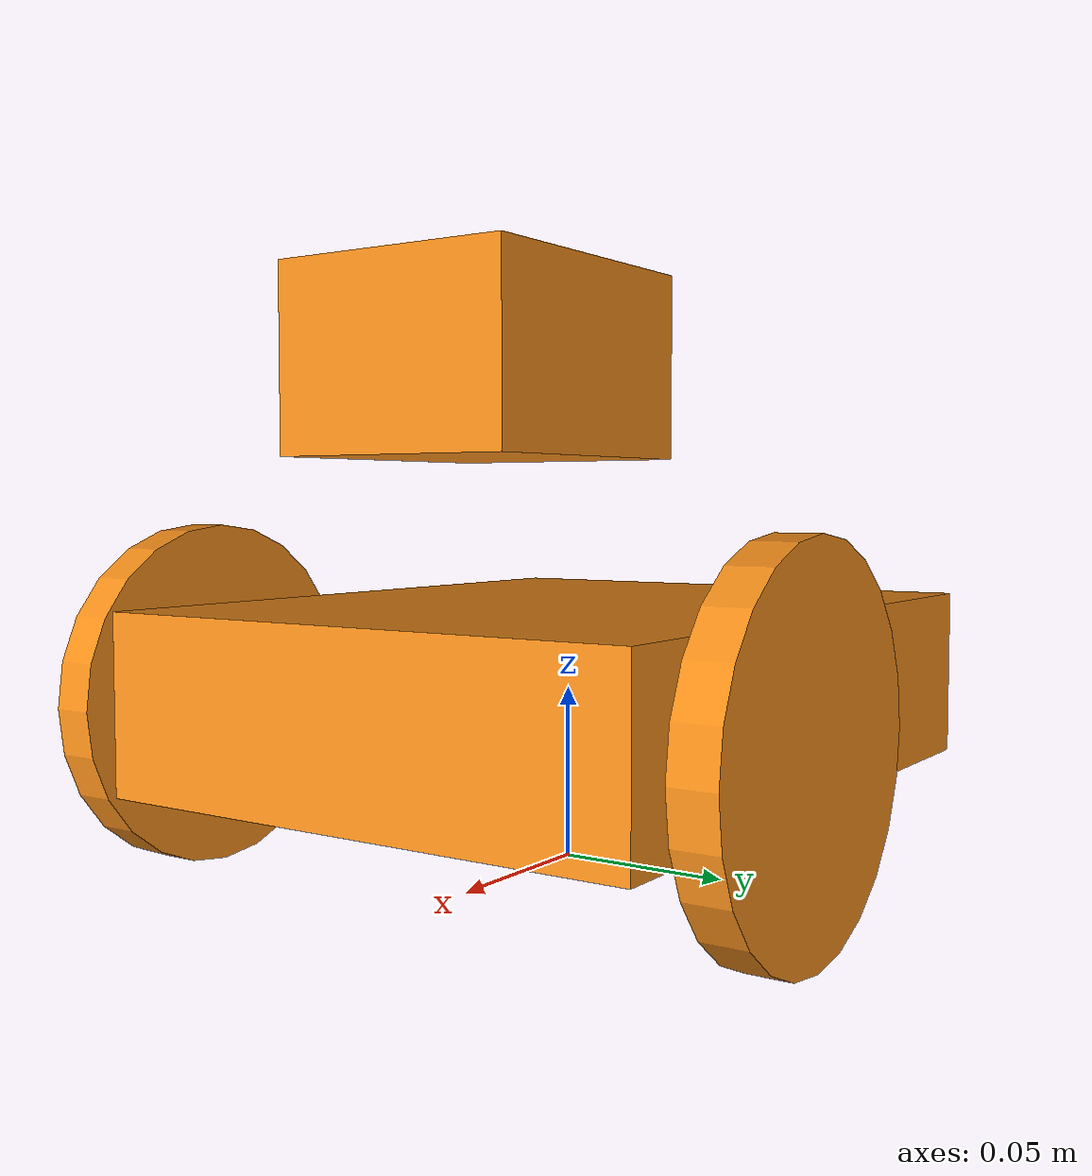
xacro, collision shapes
<?xml version="1.0"?>
<robot xmlns:xacro="http://www.ros.org/wiki/xacro" name="puzzlebot">

    <xacro:arg name="prefix" default="" />

    <!-- INERTIAL MACROS AND MATERIALS -->
    <xacro:include filename="$(find puzzlebot_description)/urdf/misc/macros.xacro"/>
    <xacro:include filename="$(find puzzlebot_description)/urdf/misc/materials.xacro"/>
    <!-- LINKS AND JOINTS BASE AND WHEELS -->
    <xacro:include filename="$(find puzzlebot_description)/urdf/puzzlebot_core.xacro"/>
    <!-- LIDAR LINKS AND JOINTS -->
    <xacro:include filename="$(find puzzlebot_description)/urdf/lidar.xacro"/>
    <!-- CONTROL W/GAZEBO -->
    <xacro:include filename="$(find puzzlebot_description)/urdf/puzzlebot_control.xacro"/>

    <xacro:puzzlebot_core prefix="$(arg prefix)"/>
    <xacro:rpi_lidar_sensor prefix="$(arg prefix)"/>
    <xacro:puzzlebot_control prefix="$(arg prefix)"/>

</robot>

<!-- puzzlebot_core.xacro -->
<robot xmlns:xacro="http://www.ros.org/wiki/xacro">

    <xacro:macro name="puzzlebot_core" params="prefix">

        <!-- BASE FOOTPRINT -->
        <link name="${prefix}base_footprint"></link>

        <!-- BASE LINK -->

        <link name="${prefix}base_link">
            <visual>
                <geometry>
                    <mesh filename="file://$(find puzzlebot_description)/meshes/Puzzlebot_Jetson_Lidar_Edition_Base.stl"/>
                </geometry>
                <material name="orange"/>
            </visual>
            <collision>
                <origin xyz="0.0 0.0 0.0" rpy="0.0 0.0 0.0"/>
                <geometry>
                    <box size="0.2 0.16 0.0503"/>
                </geometry>
            </collision>
            <inertial>
                <mass value="0.351"/>
                <xacro:box_inertia mass="0.351" x="0.2" y="0.16" z="0.0503"/>
            </inertial>
        </link>

        <joint name="${prefix}base_link_joint" type="fixed">
            <origin xyz="0.0 0.0 0.05" rpy="0.0 0.0 0.0"/>
            <parent link="${prefix}base_footprint"/>
            <child link="${prefix}base_link"/>
        </joint>

        <!-- LEFT WHEEL -->

        <link name="${prefix}left_wheel_link">
            <visual>
                <origin rpy="1.57 0.0 0.0"/>
                <geometry>
                    <mesh filename="file://$(find puzzlebot_description)/meshes/Puzzlebot_Wheel.stl"/>
                </geometry>
                <material name="orange"/>
            </visual>
            <collision>
            <origin rpy="1.5707 0.0 0.0"/>
                <geometry>
                    <cylinder radius="0.05" length="0.012"/>
                </geometry>
            </collision>
            <inertial>
                <mass value="0.027"/>
                <xacro:cylinder_inertia radius="0.05" height="0.012" mass="0.027"/>
            </inertial>
        </link>

        <joint name="${prefix}left_wheel_joint" type="continuous">
            <parent link="${prefix}base_link"/>
            <child link="${prefix}left_wheel_link"/>
            <origin xyz="0.052 0.095 -0.0025"/>
            <axis xyz="0.0 1.0 0.0"/>

        </joint>

        <!-- RIGHT WHEEL -->

        <link name="${prefix}right_wheel_link">
            <visual>
                <origin rpy="-1.57 0.0 0.0"/>
                <geometry>
                    <mesh filename="file://$(find puzzlebot_description)/meshes/Puzzlebot_Wheel.stl"/>
                </geometry>
                <material name="orange"/>
            </visual>
            <collision>
            <origin rpy="1.5707 0.0 0.0"/>
                <geometry>
                    <cylinder radius="0.05" length="0.012"/>
                </geometry>
            </collision>
            <inertial>
                <mass value="0.027"/>
                <xacro:cylinder_inertia radius="0.05" height="0.012" mass="0.027"/>
            </inertial>
        </link>

        <joint name="${prefix}right_wheel_joint" type="continuous">
            <parent link="${prefix}base_link"/>
            <child link="${prefix}right_wheel_link"/>
            <origin xyz="0.052 -0.095 -0.0025"/>
            <axis xyz="0.0 1.0 0.0"/>

        </joint>

        <!-- CASTER  WHEEL -->

        <link name="${prefix}caster_link">
            <visual>
                <origin xyz="0.0 0.0 -0.015"/>
                <geometry>
                    <mesh filename="file://$(find puzzlebot_description)/meshes/Puzzlebot_Caster_Wheel.stl"/>
                </geometry>
                <material name="orange"/>
            </visual>
            <collision>
                <geometry>
                    <sphere radius="0.02"/>
                </geometry>
            </collision>
            <inertial>
                <mass value="0.016"/>
                <xacro:solid_sphere_inertia  mass="0.016" radius="0.02"/>
            </inertial>
        </link>

        <joint name="${prefix}caster_joint" type="fixed">
            <parent link="${prefix}base_link"/>
            <child link="${prefix}caster_link"/>
            <origin xyz="-0.095 0.0 -0.03"/>
        </joint>
    </xacro:macro>
</robot>

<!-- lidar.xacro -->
<robot xmlns:xacro="http://www.ros.org/wiki/xacro">

  <xacro:property name="M_PI" value="3.1415926535897931" />

  <xacro:macro name="rpi_lidar_sensor" params="
    prefix:=''
    frame_name:='laser_frame'
    parent:='base_link'
    mesh_file:='file://$(find puzzlebot_description)/meshes/RPLidar.stl'

    lidar_base_mass:='0.1755'
    lidar_base_length:='0.08'
    lidar_base_width:='0.07'
    lidar_base_height:='0.05'

    lidar_base_inertia_pos_x:='0.0'
    lidar_base_inertia_pos_y:='0.0'
    lidar_base_inertia_pos_z:='0.021'
    lidar_base_inertia_pos_r:='0.0'
    lidar_base_inertia_pos_p:='0.0'
    lidar_base_inertia_pos_w:='0.0'

    lidar_base_collision_pos_x:='0.0'
    lidar_base_collision_pos_y:='0.0'
    lidar_base_collision_pos_z:='0.021'
    lidar_base_collision_pos_r:='0.0'
    lidar_base_collision_pos_p:='0.0'
    lidar_base_collision_pos_w:='0.0'

    lidar_base_mesh_pos_x:='0.0'
    lidar_base_mesh_pos_y:='0.0'
    lidar_base_mesh_pos_z:='0.025'
    lidar_base_mesh_pos_r:='0.0'
    lidar_base_mesh_pos_p:='0.0'
    lidar_base_mesh_pos_w:='0.0'

    lidar_base_pos_x:='0.0425'
    lidar_base_pos_y:='0.00'
    lidar_base_pos_z:='0.070'
    lidar_base_pos_r:='0.0'
    lidar_base_pos_p:='0.0'
    lidar_base_pos_w:='0.0'

    lidar_pos_x:='0.0'
    lidar_pos_y:='0.00'
    lidar_pos_z:='0.035'
    lidar_pos_r:='0.0'
    lidar_pos_p:='0.0'
    lidar_pos_w:='0.0'

    update_rate:='10'
    ray_count:='360'
    min_angle:='-3.14159'
    max_angle:='3.14159'
    min_range:='0.15'
    max_range:='12.0'
    range_resolution:='0.017'
    topic_name:='scan'
    always_on:='true'
    visualize:='false'
    ">

    <link name="${prefix}lidar_base_link">
        <visual>
            <origin xyz="${lidar_base_mesh_pos_x} ${lidar_base_mesh_pos_y} ${lidar_base_mesh_pos_z}" rpy="${lidar_base_mesh_pos_r} ${lidar_base_mesh_pos_p} ${lidar_base_mesh_pos_w}"/>
            <geometry>
                <mesh filename="${mesh_file}"/>
            </geometry>
            <material name="orange"/>
        </visual>

        <collision>
            <origin xyz="${lidar_base_collision_pos_x} ${lidar_base_collision_pos_y} ${lidar_base_collision_pos_z}" rpy="${lidar_base_collision_pos_r} ${lidar_base_collision_pos_p} ${lidar_base_collision_pos_w}"/>
            <geometry>
                <box size="${lidar_base_length} ${lidar_base_width} ${lidar_base_height}"/>
            </geometry>
        </collision>

        <inertial>
            <origin xyz="${lidar_base_inertia_pos_x} ${lidar_base_inertia_pos_y} ${lidar_base_inertia_pos_z}" rpy="${lidar_base_inertia_pos_r} ${lidar_base_inertia_pos_p} ${lidar_base_inertia_pos_w}"/>
            <mass value="${lidar_base_mass}"/>
            <xacro:box_inertia mass="${lidar_base_mass}" x="${lidar_base_length}" y="${lidar_base_width}" z="${lidar_base_height}" />
        </inertial>
    </link>

    <link name="${prefix}laser_frame">

        <visual>
            <origin xyz="0 0 0" rpy="0 0 0"/>
            <geometry>
                <box size="0.005 0.005 0.005"/> <!-- Box shape for lidar -->
            </geometry>
            <material name="orange"/>
        </visual>

        <collision>
            <origin xyz="0 0 0" rpy="0 0 0"/>
            <geometry>
                <box size="0.005 0.005 0.005"/>
            </geometry>
        </collision>

        <inertial>
            <origin xyz="0 0 0" rpy="0 0 0"/>
            <mass value="1e-5"/>
            <xacro:box_inertia mass="1e-5" x="0.005" y="0.005" z="0.005" />
        </inertial>
    </link>

    <joint name="${prefix}lidar_base_joint" type="fixed">
        <parent link="${prefix}${parent}"/>
        <child link="${prefix}lidar_base_link"/>
        <origin xyz="${lidar_base_pos_x} ${lidar_base_pos_y} ${lidar_base_pos_z}" rpy="${lidar_base_pos_r} ${lidar_base_pos_p} ${lidar_base_pos_w}"/>
    </joint>

    <joint name="${prefix}lidar_joint" type="fixed">
        <parent link="${prefix}lidar_base_link"/>
        <child link="${prefix}laser_frame"/>
        <origin xyz="${lidar_pos_x} ${lidar_pos_y} ${lidar_pos_z}" rpy="${lidar_pos_r} ${lidar_pos_p} ${lidar_pos_w}"/>
    </joint>

    <gazebo reference="${prefix}laser_frame">
        <sensor name="${prefix}lidar_sensor" type="gpu_lidar">
            <topic>${prefix}${topic_name}</topic>
            <gz_frame_id>${prefix}laser_frame</gz_frame_id>
            <pose> 0 0 0 0 0 0 </pose>
            <update_rate>${update_rate}</update_rate>
            <always_on>${always_on}</always_on>
            <visualize>${visualize}</visualize>
            <ray>
            <scan>
                <horizontal>
                <samples>${ray_count}</samples>
                <resolution>1</resolution>
                <min_angle>${min_angle}</min_angle>
                <max_angle>${max_angle}</max_angle>
                </horizontal>
                <vertical>
                <samples>1</samples>
                <resolution>0.01</resolution>
                <min_angle>0</min_angle>
                <max_angle>0</max_angle>
                </vertical>
            </scan>
            <range>
                <min>${min_range}</min>
                <max>${max_range}</max>
                <resolution>${range_resolution}</resolution>
            </range>
            </ray>
        </sensor>
    </gazebo>

    </xacro:macro>
</robot>
